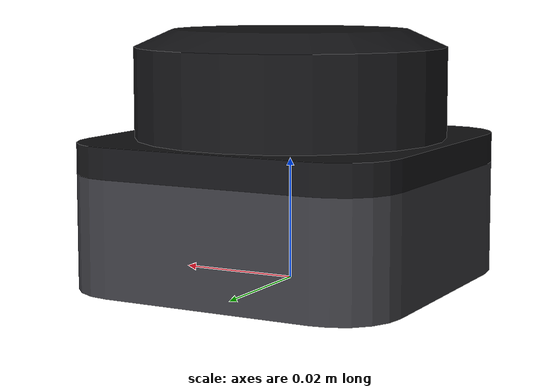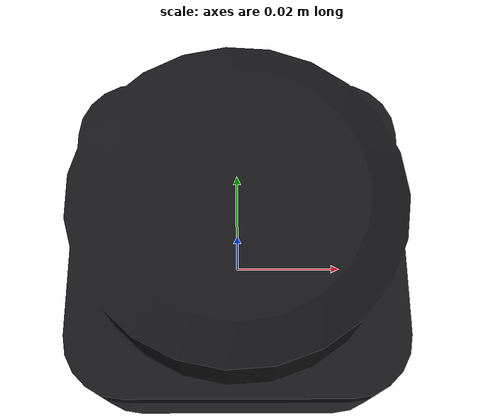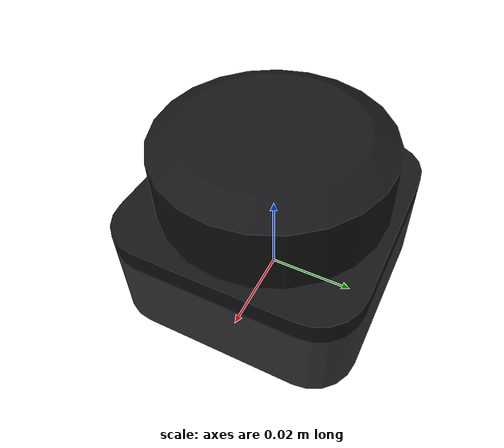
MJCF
<mujoco model="rplidar_s3">
  <compiler angle="radian" meshdir="meshes" autolimits="true"/>

  <asset>
    <material name="s3__dark_mat" rgba="0.08 0.08 0.09 1"/>
    <material name="s3__light_mat" rgba="0.22 0.22 0.24 1"/>
    <mesh name="s3__dark" file="s3__dark.obj"/>
    <mesh name="s3__light" file="s3__light.obj"/>
  </asset>

  <worldbody>
    <body name="mount">
      <inertial pos="0 0 0.0224737" mass="0.115033" diaginertia="0.00004115765 0.00004115765 0.00004956023"/>
      <geom name="rplidar_s3_visual_0" type="mesh" mesh="s3__dark" material="s3__dark_mat"
            contype="0" conaffinity="0"/>
      <geom name="rplidar_s3_visual_1" type="mesh" mesh="s3__light" material="s3__light_mat"
            contype="0" conaffinity="0"/>
      <!-- The vendor's own collision box over the 55.6 x 55.6 x 41.3 mm housing. -->
      <geom name="rplidar_s3_collision" type="box" pos="0 0 0.02065" size="0.0278 0.0278 0.02065" group="3"/>
      <site name="scan" pos="0 0 0.0305" quat="0 0 0 1" size="0.005"/>
    </body>
  </worldbody>
</mujoco>
